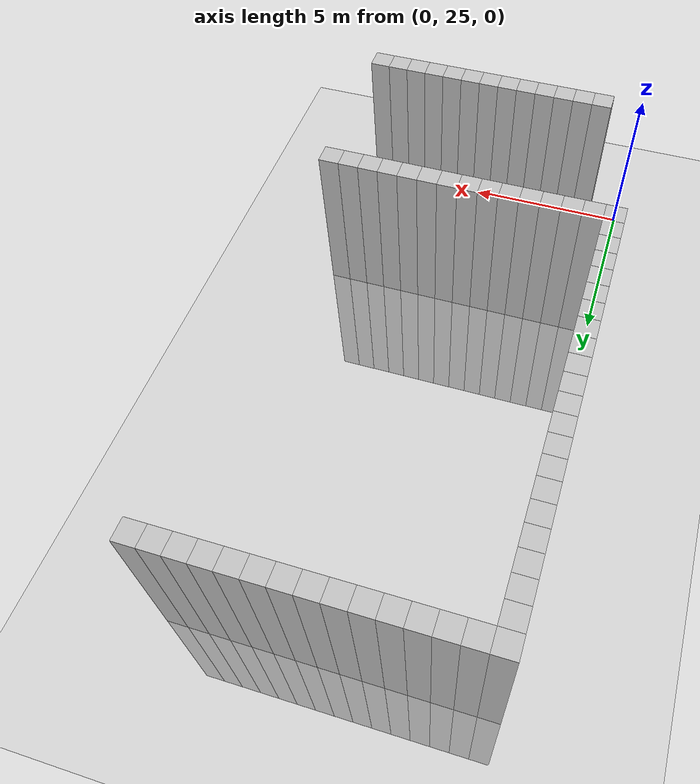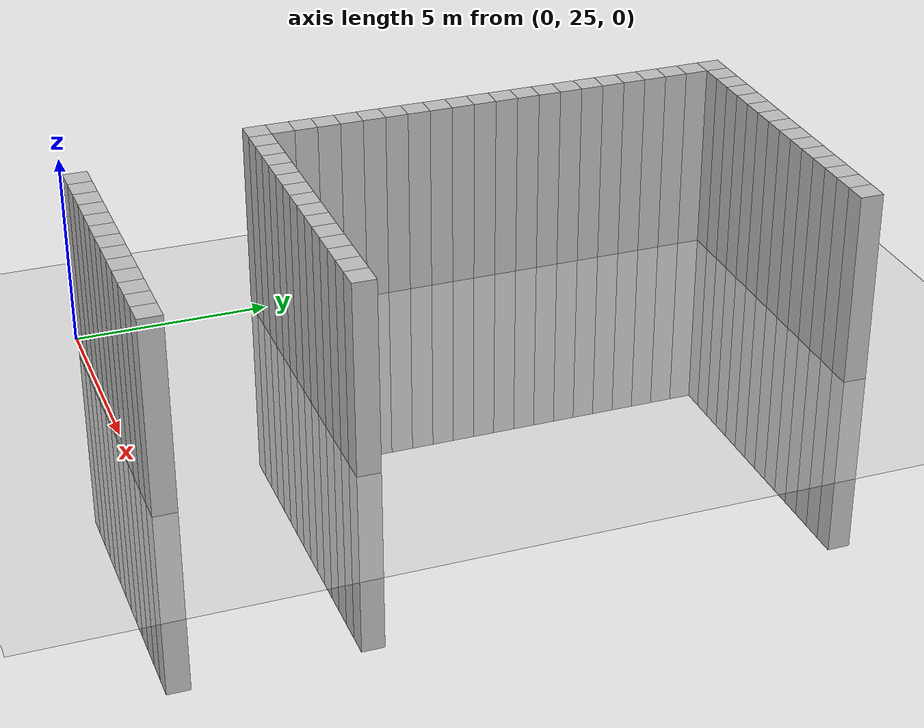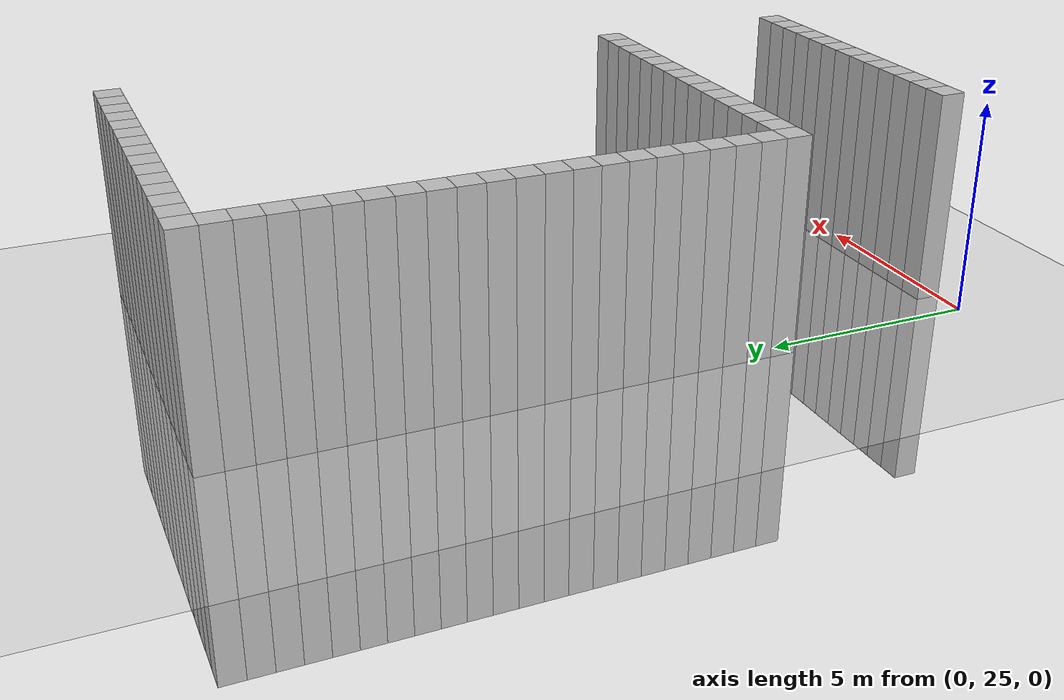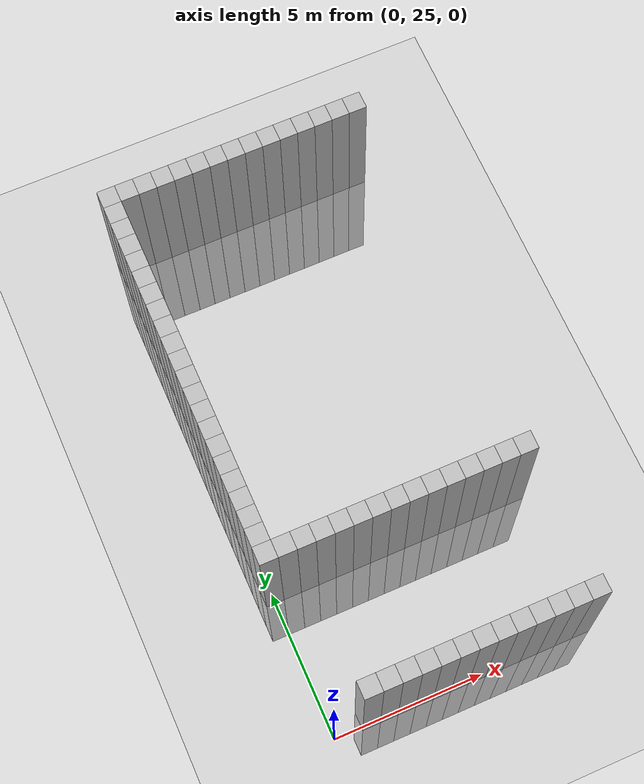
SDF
<sdf version="1.6">
 <world name="default">
  <model name="ground_plane">
   <static>1</static>
   <link name="link">
    <collision name="collision">
     <geometry><plane><normal>0 0 1</normal><size>100 100</size></plane></geometry>
     <surface><friction><ode><mu>100</mu><mu2>50</mu2></ode></friction></surface>
    </collision>
    <visual name="visual">
     <cast_shadows>0</cast_shadows>
     <geometry><plane><normal>0 0 1</normal><size>100 100</size></plane></geometry>
     <material>
      <script><uri>file://media/materials/scripts/gazebo.material</uri><name>Gazebo/Grey</name></script>
     </material>
    </visual>
   </link>
  </model>
  <model name="unit_cylinder_48">
   <static>1</static>
   <pose>1.2 25.2 0 0 -0 0</pose>
   <link name="link">
    <inertial>
     <mass>1</mass>
     <inertia><ixx>0.145833</ixx><ixy>0</ixy><ixz>0</ixz><iyy>0.145833</iyy><iyz>0</iyz><izz>0.125</izz></inertia>
    </inertial>
    <collision name="collision"><geometry><box><size>0.6 0.6 10</size></box></geometry></collision>
    <visual name="visual">
     <geometry><box><size>0.6 0.6 10</size></box></geometry>
     <material><ambient>0.753 0.753 0.753 1</ambient><diffuse>0.753 0.753 0.753 1</diffuse></material>
     <material>
      <script><name>Gazebo/Grey</name><uri>file://media/materials/scripts/gazebo.material</uri></script>
     </material>
    </visual>
   </link>
  </model>
  <model name="unit_cylinder_51">
   <static>1</static>
   <pose>1.8 25.2 0 0 -0 0</pose>
   <link name="link">
    <inertial>
     <mass>1</mass>
     <inertia><ixx>0.145833</ixx><ixy>0</ixy><ixz>0</ixz><iyy>0.145833</iyy><iyz>0</iyz><izz>0.125</izz></inertia>
    </inertial>
    <collision name="collision"><geometry><box><size>0.6 0.6 10</size></box></geometry></collision>
    <visual name="visual">
     <geometry><box><size>0.6 0.6 10</size></box></geometry>
     <material><ambient>0.753 0.753 0.753 1</ambient><diffuse>0.753 0.753 0.753 1</diffuse></material>
     <material>
      <script><name>Gazebo/Grey</name><uri>file://media/materials/scripts/gazebo.material</uri></script>
     </material>
    </visual>
   </link>
  </model>
  <model name="unit_cylinder_54">
   <static>1</static>
   <pose>2.4 25.2 0 0 -0 0</pose>
   <link name="link">
    <inertial>
     <mass>1</mass>
     <inertia><ixx>0.145833</ixx><ixy>0</ixy><ixz>0</ixz><iyy>0.145833</iyy><iyz>0</iyz><izz>0.125</izz></inertia>
    </inertial>
    <collision name="collision"><geometry><box><size>0.6 0.6 10</size></box></geometry></collision>
    <visual name="visual">
     <geometry><box><size>0.6 0.6 10</size></box></geometry>
     <material><ambient>0.753 0.753 0.753 1</ambient><diffuse>0.753 0.753 0.753 1</diffuse></material>
     <material>
      <script><name>Gazebo/Grey</name><uri>file://media/materials/scripts/gazebo.material</uri></script>
     </material>
    </visual>
   </link>
  </model>
  <model name="unit_cylinder_57">
   <static>1</static>
   <pose>3 25.2 0 0 -0 0</pose>
   <link name="link">
    <inertial>
     <mass>1</mass>
     <inertia><ixx>0.145833</ixx><ixy>0</ixy><ixz>0</ixz><iyy>0.145833</iyy><iyz>0</iyz><izz>0.125</izz></inertia>
    </inertial>
    <collision name="collision"><geometry><box><size>0.6 0.6 10</size></box></geometry></collision>
    <visual name="visual">
     <geometry><box><size>0.6 0.6 10</size></box></geometry>
     <material><ambient>0.753 0.753 0.753 1</ambient><diffuse>0.753 0.753 0.753 1</diffuse></material>
     <material>
      <script><name>Gazebo/Grey</name><uri>file://media/materials/scripts/gazebo.material</uri></script>
     </material>
    </visual>
   </link>
  </model>
  <model name="unit_cylinder_60">
   <static>1</static>
   <pose>3.6 25.2 0 0 -0 0</pose>
   <link name="link">
    <inertial>
     <mass>1</mass>
     <inertia><ixx>0.145833</ixx><ixy>0</ixy><ixz>0</ixz><iyy>0.145833</iyy><iyz>0</iyz><izz>0.125</izz></inertia>
    </inertial>
    <collision name="collision"><geometry><box><size>0.6 0.6 10</size></box></geometry></collision>
    <visual name="visual">
     <geometry><box><size>0.6 0.6 10</size></box></geometry>
     <material><ambient>0.753 0.753 0.753 1</ambient><diffuse>0.753 0.753 0.753 1</diffuse></material>
     <material>
      <script><name>Gazebo/Grey</name><uri>file://media/materials/scripts/gazebo.material</uri></script>
     </material>
    </visual>
   </link>
  </model>
  <model name="unit_cylinder_63">
   <static>1</static>
   <pose>4.2 25.2 0 0 -0 0</pose>
   <link name="link">
    <inertial>
     <mass>1</mass>
     <inertia><ixx>0.145833</ixx><ixy>0</ixy><ixz>0</ixz><iyy>0.145833</iyy><iyz>0</iyz><izz>0.125</izz></inertia>
    </inertial>
    <collision name="collision"><geometry><box><size>0.6 0.6 10</size></box></geometry></collision>
    <visual name="visual">
     <geometry><box><size>0.6 0.6 10</size></box></geometry>
     <material><ambient>0.753 0.753 0.753 1</ambient><diffuse>0.753 0.753 0.753 1</diffuse></material>
     <material>
      <script><name>Gazebo/Grey</name><uri>file://media/materials/scripts/gazebo.material</uri></script>
     </material>
    </visual>
   </link>
  </model>
  <model name="unit_cylinder_66">
   <static>1</static>
   <pose>4.8 25.2 0 0 -0 0</pose>
   <link name="link">
    <inertial>
     <mass>1</mass>
     <inertia><ixx>0.145833</ixx><ixy>0</ixy><ixz>0</ixz><iyy>0.145833</iyy><iyz>0</iyz><izz>0.125</izz></inertia>
    </inertial>
    <collision name="collision"><geometry><box><size>0.6 0.6 10</size></box></geometry></collision>
    <visual name="visual">
     <geometry><box><size>0.6 0.6 10</size></box></geometry>
     <material><ambient>0.753 0.753 0.753 1</ambient><diffuse>0.753 0.753 0.753 1</diffuse></material>
     <material>
      <script><name>Gazebo/Grey</name><uri>file://media/materials/scripts/gazebo.material</uri></script>
     </material>
    </visual>
   </link>
  </model>
  <model name="unit_cylinder_69">
   <static>1</static>
   <pose>5.4 25.2 0 0 -0 0</pose>
   <link name="link">
    <inertial>
     <mass>1</mass>
     <inertia><ixx>0.145833</ixx><ixy>0</ixy><ixz>0</ixz><iyy>0.145833</iyy><iyz>0</iyz><izz>0.125</izz></inertia>
    </inertial>
    <collision name="collision"><geometry><box><size>0.6 0.6 10</size></box></geometry></collision>
    <visual name="visual">
     <geometry><box><size>0.6 0.6 10</size></box></geometry>
     <material><ambient>0.753 0.753 0.753 1</ambient><diffuse>0.753 0.753 0.753 1</diffuse></material>
     <material>
      <script><name>Gazebo/Grey</name><uri>file://media/materials/scripts/gazebo.material</uri></script>
     </material>
    </visual>
   </link>
  </model>
  <model name="unit_cylinder_72">
   <static>1</static>
   <pose>6 25.2 0 0 -0 0</pose>
   <link name="link">
    <inertial>
     <mass>1</mass>
     <inertia><ixx>0.145833</ixx><ixy>0</ixy><ixz>0</ixz><iyy>0.145833</iyy><iyz>0</iyz><izz>0.125</izz></inertia>
    </inertial>
    <collision name="collision"><geometry><box><size>0.6 0.6 10</size></box></geometry></collision>
    <visual name="visual">
     <geometry><box><size>0.6 0.6 10</size></box></geometry>
     <material><ambient>0.753 0.753 0.753 1</ambient><diffuse>0.753 0.753 0.753 1</diffuse></material>
     <material>
      <script><name>Gazebo/Grey</name><uri>file://media/materials/scripts/gazebo.material</uri></script>
     </material>
    </visual>
   </link>
  </model>
  <model name="unit_cylinder_75">
   <static>1</static>
   <pose>6.6 25.2 0 0 -0 0</pose>
   <link name="link">
    <inertial>
     <mass>1</mass>
     <inertia><ixx>0.145833</ixx><ixy>0</ixy><ixz>0</ixz><iyy>0.145833</iyy><iyz>0</iyz><izz>0.125</izz></inertia>
    </inertial>
    <collision name="collision"><geometry><box><size>0.6 0.6 10</size></box></geometry></collision>
    <visual name="visual">
     <geometry><box><size>0.6 0.6 10</size></box></geometry>
     <material><ambient>0.753 0.753 0.753 1</ambient><diffuse>0.753 0.753 0.753 1</diffuse></material>
     <material>
      <script><name>Gazebo/Grey</name><uri>file://media/materials/scripts/gazebo.material</uri></script>
     </material>
    </visual>
   </link>
  </model>
  <model name="unit_cylinder_78">
   <static>1</static>
   <pose>7.2 25.2 0 0 -0 0</pose>
   <link name="link">
    <inertial>
     <mass>1</mass>
     <inertia><ixx>0.145833</ixx><ixy>0</ixy><ixz>0</ixz><iyy>0.145833</iyy><iyz>0</iyz><izz>0.125</izz></inertia>
    </inertial>
    <collision name="collision"><geometry><box><size>0.6 0.6 10</size></box></geometry></collision>
    <visual name="visual">
     <geometry><box><size>0.6 0.6 10</size></box></geometry>
     <material><ambient>0.753 0.753 0.753 1</ambient><diffuse>0.753 0.753 0.753 1</diffuse></material>
     <material>
      <script><name>Gazebo/Grey</name><uri>file://media/materials/scripts/gazebo.material</uri></script>
     </material>
    </visual>
   </link>
  </model>
  <model name="unit_cylinder_81">
   <static>1</static>
   <pose>7.8 25.2 0 0 -0 0</pose>
   <link name="link">
    <inertial>
     <mass>1</mass>
     <inertia><ixx>0.145833</ixx><ixy>0</ixy><ixz>0</ixz><iyy>0.145833</iyy><iyz>0</iyz><izz>0.125</izz></inertia>
    </inertial>
    <collision name="collision"><geometry><box><size>0.6 0.6 10</size></box></geometry></collision>
    <visual name="visual">
     <geometry><box><size>0.6 0.6 10</size></box></geometry>
     <material><ambient>0.753 0.753 0.753 1</ambient><diffuse>0.753 0.753 0.753 1</diffuse></material>
     <material>
      <script><name>Gazebo/Grey</name><uri>file://media/materials/scripts/gazebo.material</uri></script>
     </material>
    </visual>
   </link>
  </model>
  <model name="unit_cylinder_84">
   <static>1</static>
   <pose>8.4 25.2 0 0 -0 0</pose>
   <link name="link">
    <inertial>
     <mass>1</mass>
     <inertia><ixx>0.145833</ixx><ixy>0</ixy><ixz>0</ixz><iyy>0.145833</iyy><iyz>0</iyz><izz>0.125</izz></inertia>
    </inertial>
    <collision name="collision"><geometry><box><size>0.6 0.6 10</size></box></geometry></collision>
    <visual name="visual">
     <geometry><box><size>0.6 0.6 10</size></box></geometry>
     <material><ambient>0.753 0.753 0.753 1</ambient><diffuse>0.753 0.753 0.753 1</diffuse></material>
     <material>
      <script><name>Gazebo/Grey</name><uri>file://media/materials/scripts/gazebo.material</uri></script>
     </material>
    </visual>
   </link>
  </model>
  <model name="unit_cylinder_249">
   <static>1</static>
   <pose>0 30 0 0 -0 0</pose>
   <link name="link">
    <inertial>
     <mass>1</mass>
     <inertia><ixx>0.145833</ixx><ixy>0</ixy><ixz>0</ixz><iyy>0.145833</iyy><iyz>0</iyz><izz>0.125</izz></inertia>
    </inertial>
    <collision name="collision"><geometry><box><size>0.6 0.6 10</size></box></geometry></collision>
    <visual name="visual">
     <geometry><box><size>0.6 0.6 10</size></box></geometry>
     <material><ambient>0.753 0.753 0.753 1</ambient><diffuse>0.753 0.753 0.753 1</diffuse></material>
     <material>
      <script><name>Gazebo/Grey</name><uri>file://media/materials/scripts/gazebo.material</uri></script>
     </material>
    </visual>
   </link>
  </model>
  <model name="unit_cylinder_250">
   <static>1</static>
   <pose>0 30.6 0 0 -0 0</pose>
   <link name="link">
    <inertial>
     <mass>1</mass>
     <inertia><ixx>0.145833</ixx><ixy>0</ixy><ixz>0</ixz><iyy>0.145833</iyy><iyz>0</iyz><izz>0.125</izz></inertia>
    </inertial>
    <collision name="collision"><geometry><box><size>0.6 0.6 10</size></box></geometry></collision>
    <visual name="visual">
     <geometry><box><size>0.6 0.6 10</size></box></geometry>
     <material><ambient>0.753 0.753 0.753 1</ambient><diffuse>0.753 0.753 0.753 1</diffuse></material>
     <material>
      <script><name>Gazebo/Grey</name><uri>file://media/materials/scripts/gazebo.material</uri></script>
     </material>
    </visual>
   </link>
  </model>
  <model name="unit_cylinder_251">
   <static>1</static>
   <pose>0 31.2 0 0 -0 0</pose>
   <link name="link">
    <inertial>
     <mass>1</mass>
     <inertia><ixx>0.145833</ixx><ixy>0</ixy><ixz>0</ixz><iyy>0.145833</iyy><iyz>0</iyz><izz>0.125</izz></inertia>
    </inertial>
    <collision name="collision"><geometry><box><size>0.6 0.6 10</size></box></geometry></collision>
    <visual name="visual">
     <geometry><box><size>0.6 0.6 10</size></box></geometry>
     <material><ambient>0.753 0.753 0.753 1</ambient><diffuse>0.753 0.753 0.753 1</diffuse></material>
     <material>
      <script><name>Gazebo/Grey</name><uri>file://media/materials/scripts/gazebo.material</uri></script>
     </material>
    </visual>
   </link>
  </model>
  <model name="unit_cylinder_252">
   <static>1</static>
   <pose>0 31.8 0 0 -0 0</pose>
   <link name="link">
    <inertial>
     <mass>1</mass>
     <inertia><ixx>0.145833</ixx><ixy>0</ixy><ixz>0</ixz><iyy>0.145833</iyy><iyz>0</iyz><izz>0.125</izz></inertia>
    </inertial>
    <collision name="collision"><geometry><box><size>0.6 0.6 10</size></box></geometry></collision>
    <visual name="visual">
     <geometry><box><size>0.6 0.6 10</size></box></geometry>
     <material><ambient>0.753 0.753 0.753 1</ambient><diffuse>0.753 0.753 0.753 1</diffuse></material>
     <material>
      <script><name>Gazebo/Grey</name><uri>file://media/materials/scripts/gazebo.material</uri></script>
     </material>
    </visual>
   </link>
  </model>
  <model name="unit_cylinder_253">
   <static>1</static>
   <pose>0 32.4 0 0 -0 0</pose>
   <link name="link">
    <inertial>
     <mass>1</mass>
     <inertia><ixx>0.145833</ixx><ixy>0</ixy><ixz>0</ixz><iyy>0.145833</iyy><iyz>0</iyz><izz>0.125</izz></inertia>
    </inertial>
    <collision name="collision"><geometry><box><size>0.6 0.6 10</size></box></geometry></collision>
    <visual name="visual">
     <geometry><box><size>0.6 0.6 10</size></box></geometry>
     <material><ambient>0.753 0.753 0.753 1</ambient><diffuse>0.753 0.753 0.753 1</diffuse></material>
     <material>
      <script><name>Gazebo/Grey</name><uri>file://media/materials/scripts/gazebo.material</uri></script>
     </material>
    </visual>
   </link>
  </model>
  <model name="unit_cylinder_254">
   <static>1</static>
   <pose>0 33 0 0 -0 0</pose>
   <link name="link">
    <inertial>
     <mass>1</mass>
     <inertia><ixx>0.145833</ixx><ixy>0</ixy><ixz>0</ixz><iyy>0.145833</iyy><iyz>0</iyz><izz>0.125</izz></inertia>
    </inertial>
    <collision name="collision"><geometry><box><size>0.6 0.6 10</size></box></geometry></collision>
    <visual name="visual">
     <geometry><box><size>0.6 0.6 10</size></box></geometry>
     <material><ambient>0.753 0.753 0.753 1</ambient><diffuse>0.753 0.753 0.753 1</diffuse></material>
     <material>
      <script><name>Gazebo/Grey</name><uri>file://media/materials/scripts/gazebo.material</uri></script>
     </material>
    </visual>
   </link>
  </model>
  <model name="unit_cylinder_255">
   <static>1</static>
   <pose>0 33.6 0 0 -0 0</pose>
   <link name="link">
    <inertial>
     <mass>1</mass>
     <inertia><ixx>0.145833</ixx><ixy>0</ixy><ixz>0</ixz><iyy>0.145833</iyy><iyz>0</iyz><izz>0.125</izz></inertia>
    </inertial>
    <collision name="collision"><geometry><box><size>0.6 0.6 10</size></box></geometry></collision>
    <visual name="visual">
     <geometry><box><size>0.6 0.6 10</size></box></geometry>
     <material><ambient>0.753 0.753 0.753 1</ambient><diffuse>0.753 0.753 0.753 1</diffuse></material>
     <material>
      <script><name>Gazebo/Grey</name><uri>file://media/materials/scripts/gazebo.material</uri></script>
     </material>
    </visual>
   </link>
  </model>
  <model name="unit_cylinder_256">
   <static>1</static>
   <pose>0 34.2 0 0 -0 0</pose>
   <link name="link">
    <inertial>
     <mass>1</mass>
     <inertia><ixx>0.145833</ixx><ixy>0</ixy><ixz>0</ixz><iyy>0.145833</iyy><iyz>0</iyz><izz>0.125</izz></inertia>
    </inertial>
    <collision name="collision"><geometry><box><size>0.6 0.6 10</size></box></geometry></collision>
    <visual name="visual">
     <geometry><box><size>0.6 0.6 10</size></box></geometry>
     <material><ambient>0.753 0.753 0.753 1</ambient><diffuse>0.753 0.753 0.753 1</diffuse></material>
     <material>
      <script><name>Gazebo/Grey</name><uri>file://media/materials/scripts/gazebo.material</uri></script>
     </material>
    </visual>
   </link>
  </model>
  <model name="unit_cylinder_257">
   <static>1</static>
   <pose>0 34.8 0 0 -0 0</pose>
   <link name="link">
    <inertial>
     <mass>1</mass>
     <inertia><ixx>0.145833</ixx><ixy>0</ixy><ixz>0</ixz><iyy>0.145833</iyy><iyz>0</iyz><izz>0.125</izz></inertia>
    </inertial>
    <collision name="collision"><geometry><box><size>0.6 0.6 10</size></box></geometry></collision>
    <visual name="visual">
     <geometry><box><size>0.6 0.6 10</size></box></geometry>
     <material><ambient>0.753 0.753 0.753 1</ambient><diffuse>0.753 0.753 0.753 1</diffuse></material>
     <material>
      <script><name>Gazebo/Grey</name><uri>file://media/materials/scripts/gazebo.material</uri></script>
     </material>
    </visual>
   </link>
  </model>
  <model name="unit_cylinder_258">
   <static>1</static>
   <pose>0 35.4 0 0 -0 0</pose>
   <link name="link">
    <inertial>
     <mass>1</mass>
     <inertia><ixx>0.145833</ixx><ixy>0</ixy><ixz>0</ixz><iyy>0.145833</iyy><iyz>0</iyz><izz>0.125</izz></inertia>
    </inertial>
    <collision name="collision"><geometry><box><size>0.6 0.6 10</size></box></geometry></collision>
    <visual name="visual">
     <geometry><box><size>0.6 0.6 10</size></box></geometry>
     <material><ambient>0.753 0.753 0.753 1</ambient><diffuse>0.753 0.753 0.753 1</diffuse></material>
     <material>
      <script><name>Gazebo/Grey</name><uri>file://media/materials/scripts/gazebo.material</uri></script>
     </material>
    </visual>
   </link>
  </model>
  <model name="unit_cylinder_259">
   <static>1</static>
   <pose>0 36 0 0 -0 0</pose>
   <link name="link">
    <inertial>
     <mass>1</mass>
     <inertia><ixx>0.145833</ixx><ixy>0</ixy><ixz>0</ixz><iyy>0.145833</iyy><iyz>0</iyz><izz>0.125</izz></inertia>
    </inertial>
    <collision name="collision"><geometry><box><size>0.6 0.6 10</size></box></geometry></collision>
    <visual name="visual">
     <geometry><box><size>0.6 0.6 10</size></box></geometry>
     <material><ambient>0.753 0.753 0.753 1</ambient><diffuse>0.753 0.753 0.753 1</diffuse></material>
     <material>
      <script><name>Gazebo/Grey</name><uri>file://media/materials/scripts/gazebo.material</uri></script>
     </material>
    </visual>
   </link>
  </model>
  <model name="unit_cylinder_260">
   <static>1</static>
   <pose>0 36.6 0 0 -0 0</pose>
   <link name="link">
    <inertial>
     <mass>1</mass>
     <inertia><ixx>0.145833</ixx><ixy>0</ixy><ixz>0</ixz><iyy>0.145833</iyy><iyz>0</iyz><izz>0.125</izz></inertia>
    </inertial>
    <collision name="collision"><geometry><box><size>0.6 0.6 10</size></box></geometry></collision>
    <visual name="visual">
     <geometry><box><size>0.6 0.6 10</size></box></geometry>
     <material><ambient>0.753 0.753 0.753 1</ambient><diffuse>0.753 0.753 0.753 1</diffuse></material>
     <material>
      <script><name>Gazebo/Grey</name><uri>file://media/materials/scripts/gazebo.material</uri></script>
     </material>
    </visual>
   </link>
  </model>
  <model name="unit_cylinder_261">
   <static>1</static>
   <pose>0 37.2 0 0 -0 0</pose>
   <link name="link">
    <inertial>
     <mass>1</mass>
     <inertia><ixx>0.145833</ixx><ixy>0</ixy><ixz>0</ixz><iyy>0.145833</iyy><iyz>0</iyz><izz>0.125</izz></inertia>
    </inertial>
    <collision name="collision"><geometry><box><size>0.6 0.6 10</size></box></geometry></collision>
    <visual name="visual">
     <geometry><box><size>0.6 0.6 10</size></box></geometry>
     <material><ambient>0.753 0.753 0.753 1</ambient><diffuse>0.753 0.753 0.753 1</diffuse></material>
     <material>
      <script><name>Gazebo/Grey</name><uri>file://media/materials/scripts/gazebo.material</uri></script>
     </material>
    </visual>
   </link>
  </model>
  <model name="unit_cylinder_262">
   <static>1</static>
   <pose>0 37.8 0 0 -0 0</pose>
   <link name="link">
    <inertial>
     <mass>1</mass>
     <inertia><ixx>0.145833</ixx><ixy>0</ixy><ixz>0</ixz><iyy>0.145833</iyy><iyz>0</iyz><izz>0.125</izz></inertia>
    </inertial>
    <collision name="collision"><geometry><box><size>0.6 0.6 10</size></box></geometry></collision>
    <visual name="visual">
     <geometry><box><size>0.6 0.6 10</size></box></geometry>
     <material><ambient>0.753 0.753 0.753 1</ambient><diffuse>0.753 0.753 0.753 1</diffuse></material>
     <material>
      <script><name>Gazebo/Grey</name><uri>file://media/materials/scripts/gazebo.material</uri></script>
     </material>
    </visual>
   </link>
  </model>
  <model name="unit_cylinder_263">
   <static>1</static>
   <pose>0 38.4 0 0 -0 0</pose>
   <link name="link">
    <inertial>
     <mass>1</mass>
     <inertia><ixx>0.145833</ixx><ixy>0</ixy><ixz>0</ixz><iyy>0.145833</iyy><iyz>0</iyz><izz>0.125</izz></inertia>
    </inertial>
    <collision name="collision"><geometry><box><size>0.6 0.6 10</size></box></geometry></collision>
    <visual name="visual">
     <geometry><box><size>0.6 0.6 10</size></box></geometry>
     <material><ambient>0.753 0.753 0.753 1</ambient><diffuse>0.753 0.753 0.753 1</diffuse></material>
     <material>
      <script><name>Gazebo/Grey</name><uri>file://media/materials/scripts/gazebo.material</uri></script>
     </material>
    </visual>
   </link>
  </model>
  <model name="unit_cylinder_264">
   <static>1</static>
   <pose>0 39 0 0 -0 0</pose>
   <link name="link">
    <inertial>
     <mass>1</mass>
     <inertia><ixx>0.145833</ixx><ixy>0</ixy><ixz>0</ixz><iyy>0.145833</iyy><iyz>0</iyz><izz>0.125</izz></inertia>
    </inertial>
    <collision name="collision"><geometry><box><size>0.6 0.6 10</size></box></geometry></collision>
    <visual name="visual">
     <geometry><box><size>0.6 0.6 10</size></box></geometry>
     <material><ambient>0.753 0.753 0.753 1</ambient><diffuse>0.753 0.753 0.753 1</diffuse></material>
     <material>
      <script><name>Gazebo/Grey</name><uri>file://media/materials/scripts/gazebo.material</uri></script>
     </material>
    </visual>
   </link>
  </model>
  <model name="unit_cylinder_265">
   <static>1</static>
   <pose>0 39.6 0 0 -0 0</pose>
   <link name="link">
    <inertial>
     <mass>1</mass>
     <inertia><ixx>0.145833</ixx><ixy>0</ixy><ixz>0</ixz><iyy>0.145833</iyy><iyz>0</iyz><izz>0.125</izz></inertia>
    </inertial>
    <collision name="collision"><geometry><box><size>0.6 0.6 10</size></box></geometry></collision>
    <visual name="visual">
     <geometry><box><size>0.6 0.6 10</size></box></geometry>
     <material><ambient>0.753 0.753 0.753 1</ambient><diffuse>0.753 0.753 0.753 1</diffuse></material>
     <material>
      <script><name>Gazebo/Grey</name><uri>file://media/materials/scripts/gazebo.material</uri></script>
     </material>
    </visual>
   </link>
  </model>
  <model name="unit_cylinder_266">
   <static>1</static>
   <pose>0 40.2 0 0 -0 0</pose>
   <link name="link">
    <inertial>
     <mass>1</mass>
     <inertia><ixx>0.145833</ixx><ixy>0</ixy><ixz>0</ixz><iyy>0.145833</iyy><iyz>0</iyz><izz>0.125</izz></inertia>
    </inertial>
    <collision name="collision"><geometry><box><size>0.6 0.6 10</size></box></geometry></collision>
    <visual name="visual">
     <geometry><box><size>0.6 0.6 10</size></box></geometry>
     <material><ambient>0.753 0.753 0.753 1</ambient><diffuse>0.753 0.753 0.753 1</diffuse></material>
     <material>
      <script><name>Gazebo/Grey</name><uri>file://media/materials/scripts/gazebo.material</uri></script>
     </material>
    </visual>
   </link>
  </model>
  <model name="unit_cylinder_267">
   <static>1</static>
   <pose>0 40.8 0 0 -0 0</pose>
   <link name="link">
    <inertial>
     <mass>1</mass>
     <inertia><ixx>0.145833</ixx><ixy>0</ixy><ixz>0</ixz><iyy>0.145833</iyy><iyz>0</iyz><izz>0.125</izz></inertia>
    </inertial>
    <collision name="collision"><geometry><box><size>0.6 0.6 10</size></box></geometry></collision>
    <visual name="visual">
     <geometry><box><size>0.6 0.6 10</size></box></geometry>
     <material><ambient>0.753 0.753 0.753 1</ambient><diffuse>0.753 0.753 0.753 1</diffuse></material>
     <material>
      <script><name>Gazebo/Grey</name><uri>file://media/materials/scripts/gazebo.material</uri></script>
     </material>
    </visual>
   </link>
  </model>
  <model name="unit_cylinder_268">
   <static>1</static>
   <pose>0 41.4 0 0 -0 0</pose>
   <link name="link">
    <inertial>
     <mass>1</mass>
     <inertia><ixx>0.145833</ixx><ixy>0</ixy><ixz>0</ixz><iyy>0.145833</iyy><iyz>0</iyz><izz>0.125</izz></inertia>
    </inertial>
    <collision name="collision"><geometry><box><size>0.6 0.6 10</size></box></geometry></collision>
    <visual name="visual">
     <geometry><box><size>0.6 0.6 10</size></box></geometry>
     <material><ambient>0.753 0.753 0.753 1</ambient><diffuse>0.753 0.753 0.753 1</diffuse></material>
     <material>
      <script><name>Gazebo/Grey</name><uri>file://media/materials/scripts/gazebo.material</uri></script>
     </material>
    </visual>
   </link>
  </model>
  <model name="unit_cylinder_269">
   <static>1</static>
   <pose>0 42 0 0 -0 0</pose>
   <link name="link">
    <inertial>
     <mass>1</mass>
     <inertia><ixx>0.145833</ixx><ixy>0</ixy><ixz>0</ixz><iyy>0.145833</iyy><iyz>0</iyz><izz>0.125</izz></inertia>
    </inertial>
    <collision name="collision"><geometry><box><size>0.6 0.6 10</size></box></geometry></collision>
    <visual name="visual">
     <geometry><box><size>0.6 0.6 10</size></box></geometry>
     <material><ambient>0.753 0.753 0.753 1</ambient><diffuse>0.753 0.753 0.753 1</diffuse></material>
     <material>
      <script><name>Gazebo/Grey</name><uri>file://media/materials/scripts/gazebo.material</uri></script>
     </material>
    </visual>
   </link>
  </model>
  <model name="unit_cylinder_270">
   <static>1</static>
   <pose>0 42.6 0 0 -0 0</pose>
   <link name="link">
    <inertial>
     <mass>1</mass>
     <inertia><ixx>0.145833</ixx><ixy>0</ixy><ixz>0</ixz><iyy>0.145833</iyy><iyz>0</iyz><izz>0.125</izz></inertia>
    </inertial>
    <collision name="collision"><geometry><box><size>0.6 0.6 10</size></box></geometry></collision>
    <visual name="visual">
     <geometry><box><size>0.6 0.6 10</size></box></geometry>
     <material><ambient>0.753 0.753 0.753 1</ambient><diffuse>0.753 0.753 0.753 1</diffuse></material>
     <material>
      <script><name>Gazebo/Grey</name><uri>file://media/materials/scripts/gazebo.material</uri></script>
     </material>
    </visual>
   </link>
  </model>
  <model name="unit_cylinder_271">
   <static>1</static>
   <pose>0.6 30 0 0 -0 0</pose>
   <link name="link">
    <inertial>
     <mass>1</mass>
     <inertia><ixx>0.145833</ixx><ixy>0</ixy><ixz>0</ixz><iyy>0.145833</iyy><iyz>0</iyz><izz>0.125</izz></inertia>
    </inertial>
    <collision name="collision"><geometry><box><size>0.6 0.6 10</size></box></geometry></collision>
    <visual name="visual">
     <geometry><box><size>0.6 0.6 10</size></box></geometry>
     <material><ambient>0.753 0.753 0.753 1</ambient><diffuse>0.753 0.753 0.753 1</diffuse></material>
     <material>
      <script><name>Gazebo/Grey</name><uri>file://media/materials/scripts/gazebo.material</uri></script>
     </material>
    </visual>
   </link>
  </model>
  <model name="unit_cylinder_272">
   <static>1</static>
   <pose>0.6 42.6 0 0 -0 0</pose>
   <link name="link">
    <inertial>
     <mass>1</mass>
     <inertia><ixx>0.145833</ixx><ixy>0</ixy><ixz>0</ixz><iyy>0.145833</iyy><iyz>0</iyz><izz>0.125</izz></inertia>
    </inertial>
    <collision name="collision"><geometry><box><size>0.6 0.6 10</size></box></geometry></collision>
    <visual name="visual">
     <geometry><box><size>0.6 0.6 10</size></box></geometry>
     <material><ambient>0.753 0.753 0.753 1</ambient><diffuse>0.753 0.753 0.753 1</diffuse></material>
     <material>
      <script><name>Gazebo/Grey</name><uri>file://media/materials/scripts/gazebo.material</uri></script>
     </material>
    </visual>
   </link>
  </model>
  <model name="unit_cylinder_273">
   <static>1</static>
   <pose>1.2 30 0 0 -0 0</pose>
   <link name="link">
    <inertial>
     <mass>1</mass>
     <inertia><ixx>0.145833</ixx><ixy>0</ixy><ixz>0</ixz><iyy>0.145833</iyy><iyz>0</iyz><izz>0.125</izz></inertia>
    </inertial>
    <collision name="collision"><geometry><box><size>0.6 0.6 10</size></box></geometry></collision>
    <visual name="visual">
     <geometry><box><size>0.6 0.6 10</size></box></geometry>
     <material><ambient>0.753 0.753 0.753 1</ambient><diffuse>0.753 0.753 0.753 1</diffuse></material>
     <material>
      <script><name>Gazebo/Grey</name><uri>file://media/materials/scripts/gazebo.material</uri></script>
     </material>
    </visual>
   </link>
  </model>
  <model name="unit_cylinder_274">
   <static>1</static>
   <pose>1.2 42.6 0 0 -0 0</pose>
   <link name="link">
    <inertial>
     <mass>1</mass>
     <inertia><ixx>0.145833</ixx><ixy>0</ixy><ixz>0</ixz><iyy>0.145833</iyy><iyz>0</iyz><izz>0.125</izz></inertia>
    </inertial>
    <collision name="collision"><geometry><box><size>0.6 0.6 10</size></box></geometry></collision>
    <visual name="visual">
     <geometry><box><size>0.6 0.6 10</size></box></geometry>
     <material><ambient>0.753 0.753 0.753 1</ambient><diffuse>0.753 0.753 0.753 1</diffuse></material>
     <material>
      <script><name>Gazebo/Grey</name><uri>file://media/materials/scripts/gazebo.material</uri></script>
     </material>
    </visual>
   </link>
  </model>
  <model name="unit_cylinder_275">
   <static>1</static>
   <pose>1.8 30 0 0 -0 0</pose>
   <link name="link">
    <inertial>
     <mass>1</mass>
     <inertia><ixx>0.145833</ixx><ixy>0</ixy><ixz>0</ixz><iyy>0.145833</iyy><iyz>0</iyz><izz>0.125</izz></inertia>
    </inertial>
    <collision name="collision"><geometry><box><size>0.6 0.6 10</size></box></geometry></collision>
    <visual name="visual">
     <geometry><box><size>0.6 0.6 10</size></box></geometry>
     <material><ambient>0.753 0.753 0.753 1</ambient><diffuse>0.753 0.753 0.753 1</diffuse></material>
     <material>
      <script><name>Gazebo/Grey</name><uri>file://media/materials/scripts/gazebo.material</uri></script>
     </material>
    </visual>
   </link>
  </model>
  <model name="unit_cylinder_276">
   <static>1</static>
   <pose>1.8 42.6 0 0 -0 0</pose>
   <link name="link">
    <inertial>
     <mass>1</mass>
     <inertia><ixx>0.145833</ixx><ixy>0</ixy><ixz>0</ixz><iyy>0.145833</iyy><iyz>0</iyz><izz>0.125</izz></inertia>
    </inertial>
    <collision name="collision"><geometry><box><size>0.6 0.6 10</size></box></geometry></collision>
    <visual name="visual">
     <geometry><box><size>0.6 0.6 10</size></box></geometry>
     <material><ambient>0.753 0.753 0.753 1</ambient><diffuse>0.753 0.753 0.753 1</diffuse></material>
     <material>
      <script><name>Gazebo/Grey</name><uri>file://media/materials/scripts/gazebo.material</uri></script>
     </material>
    </visual>
   </link>
  </model>
  <model name="unit_cylinder_277">
   <static>1</static>
   <pose>2.4 30 0 0 -0 0</pose>
   <link name="link">
    <inertial>
     <mass>1</mass>
     <inertia><ixx>0.145833</ixx><ixy>0</ixy><ixz>0</ixz><iyy>0.145833</iyy><iyz>0</iyz><izz>0.125</izz></inertia>
    </inertial>
    <collision name="collision"><geometry><box><size>0.6 0.6 10</size></box></geometry></collision>
    <visual name="visual">
     <geometry><box><size>0.6 0.6 10</size></box></geometry>
     <material><ambient>0.753 0.753 0.753 1</ambient><diffuse>0.753 0.753 0.753 1</diffuse></material>
     <material>
      <script><name>Gazebo/Grey</name><uri>file://media/materials/scripts/gazebo.material</uri></script>
     </material>
    </visual>
   </link>
  </model>
  <model name="unit_cylinder_278">
   <static>1</static>
   <pose>2.4 42.6 0 0 -0 0</pose>
   <link name="link">
    <inertial>
     <mass>1</mass>
     <inertia><ixx>0.145833</ixx><ixy>0</ixy><ixz>0</ixz><iyy>0.145833</iyy><iyz>0</iyz><izz>0.125</izz></inertia>
    </inertial>
    <collision name="collision"><geometry><box><size>0.6 0.6 10</size></box></geometry></collision>
    <visual name="visual">
     <geometry><box><size>0.6 0.6 10</size></box></geometry>
     <material><ambient>0.753 0.753 0.753 1</ambient><diffuse>0.753 0.753 0.753 1</diffuse></material>
     <material>
      <script><name>Gazebo/Grey</name><uri>file://media/materials/scripts/gazebo.material</uri></script>
     </material>
    </visual>
   </link>
  </model>
  <model name="unit_cylinder_279">
   <static>1</static>
   <pose>3 30 0 0 -0 0</pose>
   <link name="link">
    <inertial>
     <mass>1</mass>
     <inertia><ixx>0.145833</ixx><ixy>0</ixy><ixz>0</ixz><iyy>0.145833</iyy><iyz>0</iyz><izz>0.125</izz></inertia>
    </inertial>
    <collision name="collision"><geometry><box><size>0.6 0.6 10</size></box></geometry></collision>
    <visual name="visual">
     <geometry><box><size>0.6 0.6 10</size></box></geometry>
     <material><ambient>0.753 0.753 0.753 1</ambient><diffuse>0.753 0.753 0.753 1</diffuse></material>
     <material>
      <script><name>Gazebo/Grey</name><uri>file://media/materials/scripts/gazebo.material</uri></script>
     </material>
    </visual>
   </link>
  </model>
  <model name="unit_cylinder_280">
   <static>1</static>
   <pose>3 42.6 0 0 -0 0</pose>
   <link name="link">
    <inertial>
     <mass>1</mass>
     <inertia><ixx>0.145833</ixx><ixy>0</ixy><ixz>0</ixz><iyy>0.145833</iyy><iyz>0</iyz><izz>0.125</izz></inertia>
    </inertial>
    <collision name="collision"><geometry><box><size>0.6 0.6 10</size></box></geometry></collision>
    <visual name="visual">
     <geometry><box><size>0.6 0.6 10</size></box></geometry>
     <material><ambient>0.753 0.753 0.753 1</ambient><diffuse>0.753 0.753 0.753 1</diffuse></material>
     <material>
      <script><name>Gazebo/Grey</name><uri>file://media/materials/scripts/gazebo.material</uri></script>
     </material>
    </visual>
   </link>
  </model>
  <model name="unit_cylinder_281">
   <static>1</static>
   <pose>3.6 30 0 0 -0 0</pose>
   <link name="link">
    <inertial>
     <mass>1</mass>
     <inertia><ixx>0.145833</ixx><ixy>0</ixy><ixz>0</ixz><iyy>0.145833</iyy><iyz>0</iyz><izz>0.125</izz></inertia>
    </inertial>
    <collision name="collision"><geometry><box><size>0.6 0.6 10</size></box></geometry></collision>
    <visual name="visual">
     <geometry><box><size>0.6 0.6 10</size></box></geometry>
     <material><ambient>0.753 0.753 0.753 1</ambient><diffuse>0.753 0.753 0.753 1</diffuse></material>
     <material>
      <script><name>Gazebo/Grey</name><uri>file://media/materials/scripts/gazebo.material</uri></script>
     </material>
    </visual>
   </link>
  </model>
  <model name="unit_cylinder_282">
   <static>1</static>
   <pose>3.6 42.6 0 0 -0 0</pose>
   <link name="link">
    <inertial>
     <mass>1</mass>
     <inertia><ixx>0.145833</ixx><ixy>0</ixy><ixz>0</ixz><iyy>0.145833</iyy><iyz>0</iyz><izz>0.125</izz></inertia>
    </inertial>
    <collision name="collision"><geometry><box><size>0.6 0.6 10</size></box></geometry></collision>
    <visual name="visual">
     <geometry><box><size>0.6 0.6 10</size></box></geometry>
     <material><ambient>0.753 0.753 0.753 1</ambient><diffuse>0.753 0.753 0.753 1</diffuse></material>
     <material>
      <script><name>Gazebo/Grey</name><uri>file://media/materials/scripts/gazebo.material</uri></script>
     </material>
    </visual>
   </link>
  </model>
  <model name="unit_cylinder_283">
   <static>1</static>
   <pose>4.2 30 0 0 -0 0</pose>
   <link name="link">
    <inertial>
     <mass>1</mass>
     <inertia><ixx>0.145833</ixx><ixy>0</ixy><ixz>0</ixz><iyy>0.145833</iyy><iyz>0</iyz><izz>0.125</izz></inertia>
    </inertial>
    <collision name="collision"><geometry><box><size>0.6 0.6 10</size></box></geometry></collision>
    <visual name="visual">
     <geometry><box><size>0.6 0.6 10</size></box></geometry>
     <material><ambient>0.753 0.753 0.753 1</ambient><diffuse>0.753 0.753 0.753 1</diffuse></material>
     <material>
      <script><name>Gazebo/Grey</name><uri>file://media/materials/scripts/gazebo.material</uri></script>
     </material>
    </visual>
   </link>
  </model>
  <model name="unit_cylinder_284">
   <static>1</static>
   <pose>4.2 42.6 0 0 -0 0</pose>
   <link name="link">
    <inertial>
     <mass>1</mass>
     <inertia><ixx>0.145833</ixx><ixy>0</ixy><ixz>0</ixz><iyy>0.145833</iyy><iyz>0</iyz><izz>0.125</izz></inertia>
    </inertial>
    <collision name="collision"><geometry><box><size>0.6 0.6 10</size></box></geometry></collision>
    <visual name="visual">
     <geometry><box><size>0.6 0.6 10</size></box></geometry>
     <material><ambient>0.753 0.753 0.753 1</ambient><diffuse>0.753 0.753 0.753 1</diffuse></material>
     <material>
      <script><name>Gazebo/Grey</name><uri>file://media/materials/scripts/gazebo.material</uri></script>
     </material>
    </visual>
   </link>
  </model>
  <model name="unit_cylinder_285">
   <static>1</static>
   <pose>4.8 30 0 0 -0 0</pose>
   <link name="link">
    <inertial>
     <mass>1</mass>
     <inertia><ixx>0.145833</ixx><ixy>0</ixy><ixz>0</ixz><iyy>0.145833</iyy><iyz>0</iyz><izz>0.125</izz></inertia>
    </inertial>
    <collision name="collision"><geometry><box><size>0.6 0.6 10</size></box></geometry></collision>
    <visual name="visual">
     <geometry><box><size>0.6 0.6 10</size></box></geometry>
     <material><ambient>0.753 0.753 0.753 1</ambient><diffuse>0.753 0.753 0.753 1</diffuse></material>
     <material>
      <script><name>Gazebo/Grey</name><uri>file://media/materials/scripts/gazebo.material</uri></script>
     </material>
    </visual>
   </link>
  </model>
  <model name="unit_cylinder_286">
   <static>1</static>
   <pose>4.8 42.6 0 0 -0 0</pose>
   <link name="link">
    <inertial>
     <mass>1</mass>
     <inertia><ixx>0.145833</ixx><ixy>0</ixy><ixz>0</ixz><iyy>0.145833</iyy><iyz>0</iyz><izz>0.125</izz></inertia>
    </inertial>
    <collision name="collision"><geometry><box><size>0.6 0.6 10</size></box></geometry></collision>
    <visual name="visual">
     <geometry><box><size>0.6 0.6 10</size></box></geometry>
     <material><ambient>0.753 0.753 0.753 1</ambient><diffuse>0.753 0.753 0.753 1</diffuse></material>
     <material>
      <script><name>Gazebo/Grey</name><uri>file://media/materials/scripts/gazebo.material</uri></script>
     </material>
    </visual>
   </link>
  </model>
  <model name="unit_cylinder_287">
   <static>1</static>
   <pose>5.4 30 0 0 -0 0</pose>
   <link name="link">
    <inertial>
     <mass>1</mass>
     <inertia><ixx>0.145833</ixx><ixy>0</ixy><ixz>0</ixz><iyy>0.145833</iyy><iyz>0</iyz><izz>0.125</izz></inertia>
    </inertial>
    <collision name="collision"><geometry><box><size>0.6 0.6 10</size></box></geometry></collision>
    <visual name="visual">
     <geometry><box><size>0.6 0.6 10</size></box></geometry>
     <material><ambient>0.753 0.753 0.753 1</ambient><diffuse>0.753 0.753 0.753 1</diffuse></material>
     <material>
      <script><name>Gazebo/Grey</name><uri>file://media/materials/scripts/gazebo.material</uri></script>
     </material>
    </visual>
   </link>
  </model>
  <model name="unit_cylinder_288">
   <static>1</static>
   <pose>5.4 42.6 0 0 -0 0</pose>
   <link name="link">
    <inertial>
     <mass>1</mass>
     <inertia><ixx>0.145833</ixx><ixy>0</ixy><ixz>0</ixz><iyy>0.145833</iyy><iyz>0</iyz><izz>0.125</izz></inertia>
    </inertial>
    <collision name="collision"><geometry><box><size>0.6 0.6 10</size></box></geometry></collision>
    <visual name="visual">
     <geometry><box><size>0.6 0.6 10</size></box></geometry>
     <material><ambient>0.753 0.753 0.753 1</ambient><diffuse>0.753 0.753 0.753 1</diffuse></material>
     <material>
      <script><name>Gazebo/Grey</name><uri>file://media/materials/scripts/gazebo.material</uri></script>
     </material>
    </visual>
   </link>
  </model>
  <model name="unit_cylinder_289">
   <static>1</static>
   <pose>6 30 0 0 -0 0</pose>
   <link name="link">
    <inertial>
     <mass>1</mass>
     <inertia><ixx>0.145833</ixx><ixy>0</ixy><ixz>0</ixz><iyy>0.145833</iyy><iyz>0</iyz><izz>0.125</izz></inertia>
    </inertial>
    <collision name="collision"><geometry><box><size>0.6 0.6 10</size></box></geometry></collision>
    <visual name="visual">
     <geometry><box><size>0.6 0.6 10</size></box></geometry>
     <material><ambient>0.753 0.753 0.753 1</ambient><diffuse>0.753 0.753 0.753 1</diffuse></material>
     <material>
      <script><name>Gazebo/Grey</name><uri>file://media/materials/scripts/gazebo.material</uri></script>
     </material>
    </visual>
   </link>
  </model>
  <model name="unit_cylinder_290">
   <static>1</static>
   <pose>6 42.6 0 0 -0 0</pose>
   <link name="link">
    <inertial>
     <mass>1</mass>
     <inertia><ixx>0.145833</ixx><ixy>0</ixy><ixz>0</ixz><iyy>0.145833</iyy><iyz>0</iyz><izz>0.125</izz></inertia>
    </inertial>
    <collision name="collision"><geometry><box><size>0.6 0.6 10</size></box></geometry></collision>
    <visual name="visual">
     <geometry><box><size>0.6 0.6 10</size></box></geometry>
     <material><ambient>0.753 0.753 0.753 1</ambient><diffuse>0.753 0.753 0.753 1</diffuse></material>
     <material>
      <script><name>Gazebo/Grey</name><uri>file://media/materials/scripts/gazebo.material</uri></script>
     </material>
    </visual>
   </link>
  </model>
  <model name="unit_cylinder_291">
   <static>1</static>
   <pose>6.6 30 0 0 -0 0</pose>
   <link name="link">
    <inertial>
     <mass>1</mass>
     <inertia><ixx>0.145833</ixx><ixy>0</ixy><ixz>0</ixz><iyy>0.145833</iyy><iyz>0</iyz><izz>0.125</izz></inertia>
    </inertial>
    <collision name="collision"><geometry><box><size>0.6 0.6 10</size></box></geometry></collision>
    <visual name="visual">
     <geometry><box><size>0.6 0.6 10</size></box></geometry>
     <material><ambient>0.753 0.753 0.753 1</ambient><diffuse>0.753 0.753 0.753 1</diffuse></material>
     <material>
      <script><name>Gazebo/Grey</name><uri>file://media/materials/scripts/gazebo.material</uri></script>
     </material>
    </visual>
   </link>
  </model>
  <model name="unit_cylinder_292">
   <static>1</static>
   <pose>6.6 42.6 0 0 -0 0</pose>
   <link name="link">
    <inertial>
     <mass>1</mass>
     <inertia><ixx>0.145833</ixx><ixy>0</ixy><ixz>0</ixz><iyy>0.145833</iyy><iyz>0</iyz><izz>0.125</izz></inertia>
    </inertial>
    <collision name="collision"><geometry><box><size>0.6 0.6 10</size></box></geometry></collision>
    <visual name="visual">
     <geometry><box><size>0.6 0.6 10</size></box></geometry>
     <material><ambient>0.753 0.753 0.753 1</ambient><diffuse>0.753 0.753 0.753 1</diffuse></material>
     <material>
      <script><name>Gazebo/Grey</name><uri>file://media/materials/scripts/gazebo.material</uri></script>
     </material>
    </visual>
   </link>
  </model>
  <model name="unit_cylinder_293">
   <static>1</static>
   <pose>7.2 30 0 0 -0 0</pose>
   <link name="link">
    <inertial>
     <mass>1</mass>
     <inertia><ixx>0.145833</ixx><ixy>0</ixy><ixz>0</ixz><iyy>0.145833</iyy><iyz>0</iyz><izz>0.125</izz></inertia>
    </inertial>
    <collision name="collision"><geometry><box><size>0.6 0.6 10</size></box></geometry></collision>
    <visual name="visual">
     <geometry><box><size>0.6 0.6 10</size></box></geometry>
     <material><ambient>0.753 0.753 0.753 1</ambient><diffuse>0.753 0.753 0.753 1</diffuse></material>
     <material>
      <script><name>Gazebo/Grey</name><uri>file://media/materials/scripts/gazebo.material</uri></script>
     </material>
    </visual>
   </link>
  </model>
  <model name="unit_cylinder_294">
   <static>1</static>
   <pose>7.2 42.6 0 0 -0 0</pose>
   <link name="link">
    <inertial>
     <mass>1</mass>
     <inertia><ixx>0.145833</ixx><ixy>0</ixy><ixz>0</ixz><iyy>0.145833</iyy><iyz>0</iyz><izz>0.125</izz></inertia>
    </inertial>
    <collision name="collision"><geometry><box><size>0.6 0.6 10</size></box></geometry></collision>
    <visual name="visual">
     <geometry><box><size>0.6 0.6 10</size></box></geometry>
     <material><ambient>0.753 0.753 0.753 1</ambient><diffuse>0.753 0.753 0.753 1</diffuse></material>
     <material>
      <script><name>Gazebo/Grey</name><uri>file://media/materials/scripts/gazebo.material</uri></script>
     </material>
    </visual>
   </link>
  </model>
  <model name="unit_cylinder_295">
   <static>1</static>
   <pose>7.8 30 0 0 -0 0</pose>
   <link name="link">
    <inertial>
     <mass>1</mass>
     <inertia><ixx>0.145833</ixx><ixy>0</ixy><ixz>0</ixz><iyy>0.145833</iyy><iyz>0</iyz><izz>0.125</izz></inertia>
    </inertial>
    <collision name="collision"><geometry><box><size>0.6 0.6 10</size></box></geometry></collision>
    <visual name="visual">
     <geometry><box><size>0.6 0.6 10</size></box></geometry>
     <material><ambient>0.753 0.753 0.753 1</ambient><diffuse>0.753 0.753 0.753 1</diffuse></material>
     <material>
      <script><name>Gazebo/Grey</name><uri>file://media/materials/scripts/gazebo.material</uri></script>
     </material>
    </visual>
   </link>
  </model>
  <model name="unit_cylinder_296">
   <static>1</static>
   <pose>7.8 42.6 0 0 -0 0</pose>
   <link name="link">
    <inertial>
     <mass>1</mass>
     <inertia><ixx>0.145833</ixx><ixy>0</ixy><ixz>0</ixz><iyy>0.145833</iyy><iyz>0</iyz><izz>0.125</izz></inertia>
    </inertial>
    <collision name="collision"><geometry><box><size>0.6 0.6 10</size></box></geometry></collision>
    <visual name="visual">
     <geometry><box><size>0.6 0.6 10</size></box></geometry>
     <material><ambient>0.753 0.753 0.753 1</ambient><diffuse>0.753 0.753 0.753 1</diffuse></material>
     <material>
      <script><name>Gazebo/Grey</name><uri>file://media/materials/scripts/gazebo.material</uri></script>
     </material>
    </visual>
   </link>
  </model>
  <model name="unit_cylinder_297">
   <static>1</static>
   <pose>8.4 30 0 0 -0 0</pose>
   <link name="link">
    <inertial>
     <mass>1</mass>
     <inertia><ixx>0.145833</ixx><ixy>0</ixy><ixz>0</ixz><iyy>0.145833</iyy><iyz>0</iyz><izz>0.125</izz></inertia>
    </inertial>
    <collision name="collision"><geometry><box><size>0.6 0.6 10</size></box></geometry></collision>
    <visual name="visual">
     <geometry><box><size>0.6 0.6 10</size></box></geometry>
     <material><ambient>0.753 0.753 0.753 1</ambient><diffuse>0.753 0.753 0.753 1</diffuse></material>
     <material>
      <script><name>Gazebo/Grey</name><uri>file://media/materials/scripts/gazebo.material</uri></script>
     </material>
    </visual>
   </link>
  </model>
  <model name="unit_cylinder_298">
   <static>1</static>
   <pose>8.4 42.6 0 0 -0 0</pose>
   <link name="link">
    <inertial>
     <mass>1</mass>
     <inertia><ixx>0.145833</ixx><ixy>0</ixy><ixz>0</ixz><iyy>0.145833</iyy><iyz>0</iyz><izz>0.125</izz></inertia>
    </inertial>
    <collision name="collision"><geometry><box><size>0.6 0.6 10</size></box></geometry></collision>
    <visual name="visual">
     <geometry><box><size>0.6 0.6 10</size></box></geometry>
     <material><ambient>0.753 0.753 0.753 1</ambient><diffuse>0.753 0.753 0.753 1</diffuse></material>
     <material>
      <script><name>Gazebo/Grey</name><uri>file://media/materials/scripts/gazebo.material</uri></script>
     </material>
    </visual>
   </link>
  </model>
 </world>
</sdf>
